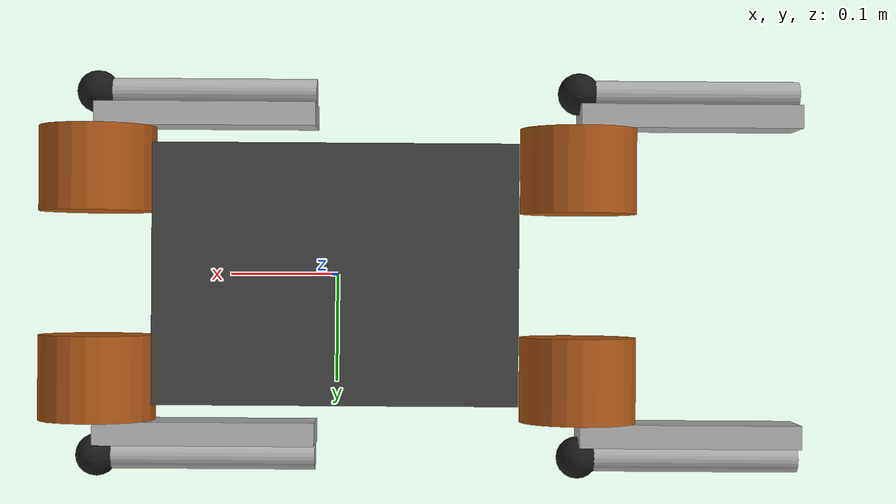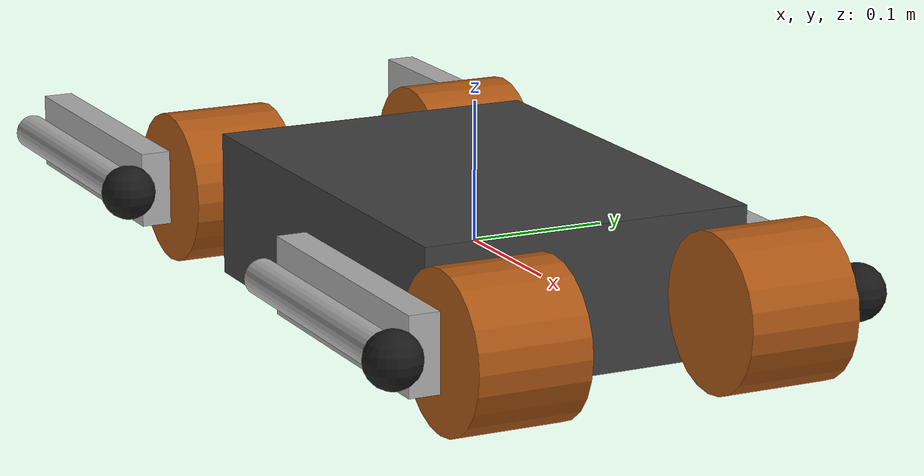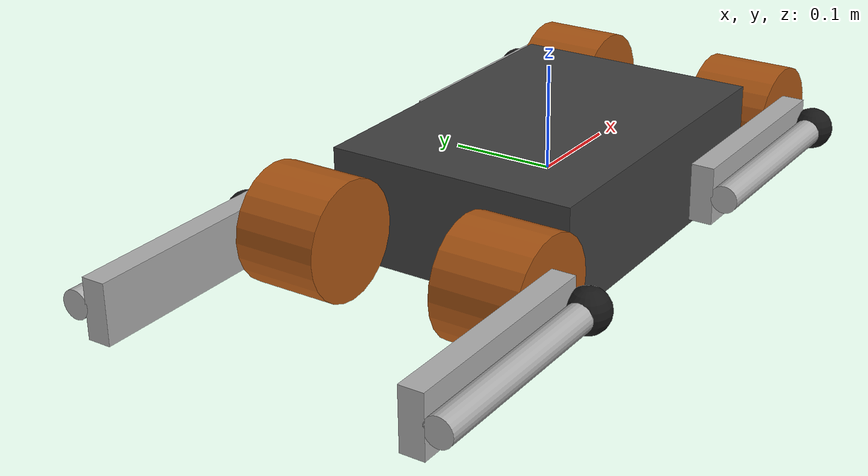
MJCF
<mujoco model="spirit">
  <compiler angle="radian" autolimits="true"/>
  <size njmax="500" nconmax="100"/>
  <default/>
  <worldbody>
    <light directional="true" cutoff="4" exponent="20" diffuse="1 1 1" specular="0 0 0" pos=".9 .3 2.5" dir="-.9 -.3 -2.5 "/>
    <geom size="0.1675 0.12 0.052" type="box" rgba="0.25 0.25 0.25 1"/>
    <body name="hip0" pos="0.2263 0.07 0">
      <inertial pos="0 0 0" quat="0.5 0.5 -0.5 0.5" mass="0.575" diaginertia="0.000869688 0.000669635 0.000669635"/>
      <joint name="joint_8" pos="0 0 0" axis="1 0 0"/>
      <geom size="0.055 0.04" pos="0 0.028 0" quat="0.707107 0.707107 0 0" type="cylinder" rgba="0.68 0.34 0.08 1"/>
      <body name="upper0" pos="0 0.10098 0">
        <inertial pos="0 0 0" quat="0.5 0.5 0.5 0.5" mass="0.775" diaginertia="0.001 0.001 5e-05"/>
        <joint name="joint_0" pos="0 0 0" axis="0 -1 0"/>
        <geom size="0.103 0.011 0.0275" pos="-0.103 -0.022 0" type="box" rgba="0.68 0.68 0.68 1"/>
        <body name="lower0" pos="-0.206 0 0">
          <inertial pos="0.0343333 0 0" quat="0.5 0.5 0.5 0.5" mass="0.09" diaginertia="0.00065545 0.00065545 3e-05"/>
          <joint name="joint_1" pos="0 0 0" axis="0 1 0"/>
          <geom size="0.013 0.103" pos="0.103 0 0" quat="0.707107 0 0.707107 0" type="cylinder" rgba="0.68 0.68 0.68 1"/>
          <geom size="0.02" pos="0.206 0 0" rgba="0.1 0.1 0.1 1"/>
        </body>
      </body>
    </body>
    <body name="hip1" pos="-0.2263 0.07 0">
      <inertial pos="0 0 0" quat="0.5 0.5 -0.5 0.5" mass="0.575" diaginertia="0.000869688 0.000669635 0.000669635"/>
      <joint name="joint_9" pos="0 0 0" axis="1 0 0"/>
      <geom size="0.055 0.04" pos="0 0.028 0" quat="0.707107 0.707107 0 0" type="cylinder" rgba="0.68 0.34 0.08 1"/>
      <body name="upper1" pos="0 0.10098 0">
        <inertial pos="0 0 0" quat="0.5 0.5 0.5 0.5" mass="0.775" diaginertia="0.001 0.001 5e-05"/>
        <joint name="joint_2" pos="0 0 0" axis="0 -1 0"/>
        <geom size="0.103 0.011 0.0275" pos="-0.103 -0.022 0" type="box" rgba="0.68 0.68 0.68 1"/>
        <body name="lower1" pos="-0.206 0 0">
          <inertial pos="0.0343333 0 0" quat="0.5 0.5 0.5 0.5" mass="0.09" diaginertia="0.00065545 0.00065545 3e-05"/>
          <joint name="joint_3" pos="0 0 0" axis="0 1 0"/>
          <geom size="0.013 0.103" pos="0.103 0 0" quat="0.707107 0 0.707107 0" type="cylinder" rgba="0.68 0.68 0.68 1"/>
          <geom size="0.02" pos="0.206 0 0" rgba="0.1 0.1 0.1 1"/>
        </body>
      </body>
    </body>
    <body name="hip2" pos="0.2263 -0.07 0">
      <inertial pos="0 0 0" quat="0.5 0.5 -0.5 0.5" mass="0.575" diaginertia="0.000869688 0.000669635 0.000669635"/>
      <joint name="joint_10" pos="0 0 0" axis="1 0 0"/>
      <geom size="0.055 0.04" pos="0 -0.028 0" quat="0.707107 0.707107 0 0" type="cylinder" rgba="0.68 0.34 0.08 1"/>
      <body name="upper2" pos="0 -0.10098 0">
        <inertial pos="0 0 0" quat="0.5 0.5 0.5 0.5" mass="0.775" diaginertia="0.001 0.001 5e-05"/>
        <joint name="joint_4" pos="0 0 0" axis="0 -1 0"/>
        <geom size="0.103 0.011 0.0275" pos="-0.103 0.022 0" type="box" rgba="0.68 0.68 0.68 1"/>
        <body name="lower2" pos="-0.206 0 0">
          <inertial pos="0.0343333 0 0" quat="0.5 0.5 0.5 0.5" mass="0.09" diaginertia="0.00065545 0.00065545 3e-05"/>
          <joint name="joint_5" pos="0 0 0" axis="0 1 0"/>
          <geom size="0.013 0.103" pos="0.103 0 0" quat="0.707107 0 0.707107 0" type="cylinder" rgba="0.68 0.68 0.68 1"/>
          <geom size="0.02" pos="0.206 0 0" rgba="0.1 0.1 0.1 1"/>
        </body>
      </body>
    </body>
    <body name="hip3" pos="-0.2263 -0.07 0">
      <inertial pos="0 0 0" quat="0.5 0.5 -0.5 0.5" mass="0.575" diaginertia="0.000869688 0.000669635 0.000669635"/>
      <joint name="joint_11" pos="0 0 0" axis="1 0 0"/>
      <geom size="0.055 0.04" pos="0 -0.028 0" quat="0.707107 0.707107 0 0" type="cylinder" rgba="0.68 0.34 0.08 1"/>
      <body name="upper3" pos="0 -0.10098 0">
        <inertial pos="0 0 0" quat="0.5 0.5 0.5 0.5" mass="0.775" diaginertia="0.001 0.001 5e-05"/>
        <joint name="joint_6" pos="0 0 0" axis="0 -1 0"/>
        <geom size="0.103 0.011 0.0275" pos="-0.103 0.022 0" type="box" rgba="0.68 0.68 0.68 1"/>
        <body name="lower3" pos="-0.206 0 0">
          <inertial pos="0.0343333 0 0" quat="0.5 0.5 0.5 0.5" mass="0.09" diaginertia="0.00065545 0.00065545 3e-05"/>
          <joint name="joint_7" pos="0 0 0" axis="0 1 0"/>
          <geom size="0.013 0.103" pos="0.103 0 0" quat="0.707107 0 0.707107 0" type="cylinder" rgba="0.68 0.68 0.68 1"/>
          <geom size="0.02" pos="0.206 0 0" rgba="0.1 0.1 0.1 1"/>
        </body>
      </body>
    </body>
  </worldbody>
</mujoco>
